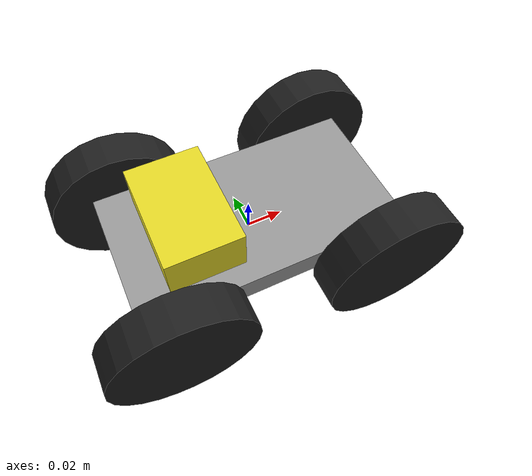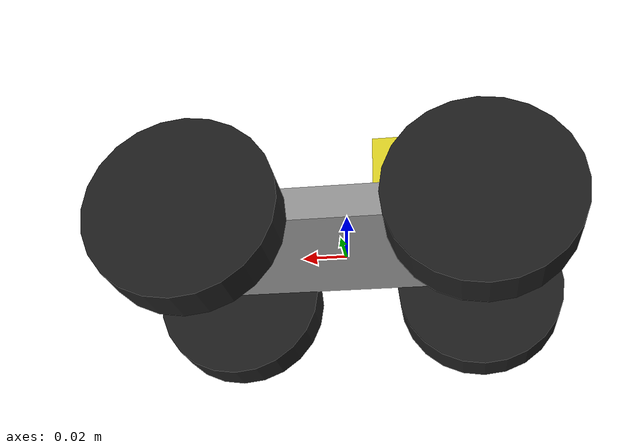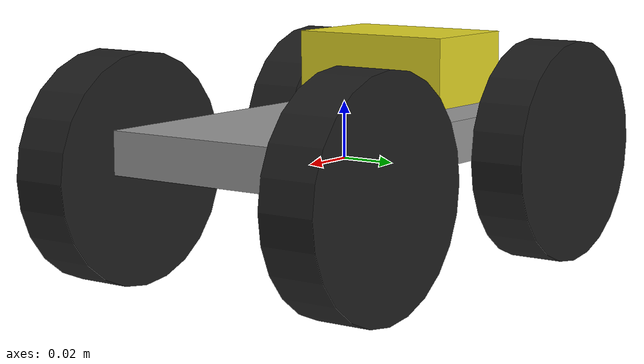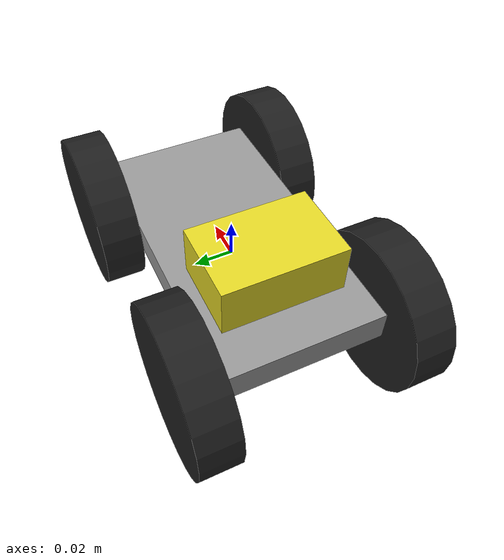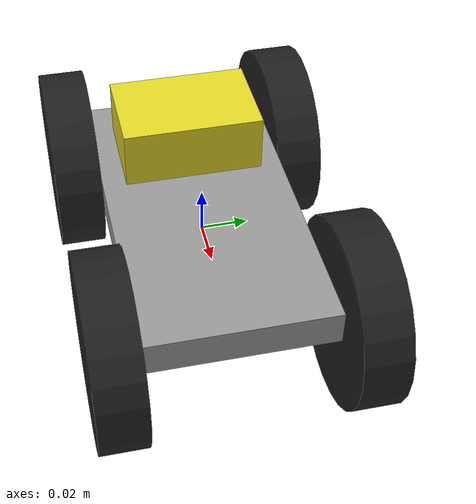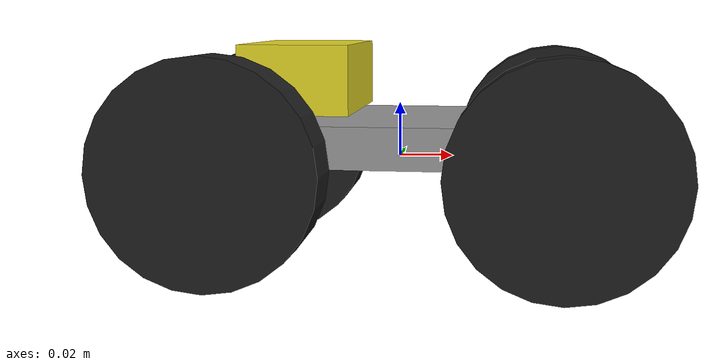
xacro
<?xml version="1.0" ?>

<robot name="trainer_bot" xmlns:xacro="http://ros.org/wiki/xacro">
  <xacro:include filename="$(find trainer_robot_description)/urdf/common_properties.xacro"/>

  <xacro:property name="base_width" value="0.08" /> <!-- Base -->
  <xacro:property name="base_length" value="0.15" /> <!-- Base -->
  <xacro:property name="base_height" value="0.015" /> <!-- Base -->
  <xacro:property name="wheel_length" value="0.02" /> <!-- Wheel -->
  <xacro:property name="wheel_radius" value="0.04" /> <!-- Wheel -->
  <xacro:property name="distance_from_middle_wheels" value="0.06" /> <!-- Wheel -->

  <xacro:macro name="wheel_continuous" params="name type distance_from_middle_wheels distance_from_base radius length mu1 mu2 mass">
    <joint name="${name}_joint" type="${type}">
      <parent link="base_link"/>
      <child link="${name}_link"/>
      <origin xyz="${distance_from_middle_wheels} ${distance_from_base} 0" rpy="0 0 0"/>
      <axis xyz="0 1 0"/>
    </joint>

    <link name="${name}_link">
      <visual>
        <origin xyz="0 0 0" rpy="1.57 0 0"/>
        <geometry>
          <cylinder radius="${radius}" length="${length}"/>
        </geometry>
        <material name="black"/>
      </visual>
      <collision>
        <origin xyz="0 0 0" rpy="1.57 0 0"/>
        <geometry>
          <cylinder radius="${radius}" length="${length * 0.8}"/>
        </geometry>
        <material name="black"/>
      </collision>
      <inertial>
        <mass value="${mass}"/>
        <inertia
                  ixx="${0.083*mass*(3*radius*radius+length*length)}"
                  ixy="0.0"
                  ixz="0.0"
                  iyy="${0.083*mass*(3*radius*radius+length*length)}"
                  iyz="0.0"
                  izz="${0.5*mass*(radius*radius)}" />
      </inertial>
    </link>
	  <transmission name="${name}_trans">
	  	<type>transmission_interface/SimpleTransmission</type>
	  	<joint name="${name}_joint">
        <hardwareInterface>hardware_interface/VelocityJointInterface</hardwareInterface>
	  	</joint>
	  	<actuator name="${name}_motor">
	  		<mechanicalReduction>1</mechanicalReduction>
	  		<hardwareInterface>VelocityJointInterface</hardwareInterface>
	  	</actuator>
	  </transmission>
    <gazebo reference="${name}_link">
      <material>Gazebo/Black</material>
      <mu1>${mu1}</mu1>
      <mu2>${mu2}</mu2>
      <maxVel>1.0</maxVel>
      <fdir1>1 0 0</fdir1>
      <material>Gazebo/FlatBlack</material>
    </gazebo>
  </xacro:macro>

  <joint name="base_joint" type="fixed">
    <parent link="base_footprint"/>
    <child link="base_link"/>
    <origin xyz="0.0 0.0 0" rpy="0 0 0"/>
  </joint>
  <link name="base_footprint"/>

  <link name="base_link">
    <visual>
      <origin xyz="0 0 ${base_height/2}" rpy="0 0.0 0"/>
      <geometry>
        <box size="${base_length} ${base_width} ${base_height}"/>
      </geometry>
      <material name="grey"/>
    </visual>
    <collision>
      <origin xyz="0 0 ${base_height/2}" rpy="0 0.0 0"/>
      <geometry>
        <box size="${base_length} ${base_width} ${base_height}"/>
      </geometry>
      <material name="grey"/>
    </collision>
    <inertial>
      <mass value="${1}"/>
      <inertia
                ixx="${0.083*1*(base_width+base_height)}"
                ixy="0.0"
                ixz="0.0"
                iyy="${0.083*1*(base_length+base_height)}"
                iyz="0.0"
                izz="${0.083*1*(base_width+base_length)}" />
    </inertial>
  </link>

  <joint name="batter_holder_joint" type="fixed">
    <parent link="base_link"/>
    <child link="battery_holder_link"/>
    <origin xyz="${distance_from_middle_wheels} 0 0.015" rpy="0 0 0"/>
  </joint>

  <link name="battery_holder_link">
    <visual>
      <origin xyz="-0.095 0 0.015" rpy="0 0 0"/>
      <geometry>
        <box size="0.04 0.06 0.025"/>
      </geometry>
      <material name="yellow"/>
    </visual>
    <collision>
      <origin xyz="-0.095 0 0.015" rpy="0 0 0"/>
      <geometry>
        <box size="0.04 0.06 0.025"/>
      </geometry>
    </collision>
  </link>
  <gazebo reference="base_link">
    <material>Gazebo/DarkGrey</material>
  </gazebo>
  <gazebo reference="battery_holder_link">
    <material>Gazebo/Yellow</material>
  </gazebo>

  <xacro:wheel_continuous name="left_front_wheel" type="continuous" distance_from_middle_wheels="${distance_from_middle_wheels}" distance_from_base="${wheel_length/2 + base_width/2}" radius="${wheel_radius}" length="${wheel_length}" mu1="1" mu2="1" mass="0.3" />
  <xacro:wheel_continuous name="right_front_wheel" type="continuous" distance_from_middle_wheels="${distance_from_middle_wheels}" distance_from_base="-${wheel_length/2 + base_width/2}" radius="${wheel_radius}" length="${wheel_length}" mu1="1" mu2="1" mass="0.3" />

  <xacro:wheel_continuous name="left_rear_wheel" type="continuous" distance_from_middle_wheels="-${distance_from_middle_wheels}" distance_from_base="${wheel_length/2 + base_width/2}" radius="${wheel_radius}" length="${wheel_length}" mu1="0.01" mu2="0.01" mass="0.3" />
  <xacro:wheel_continuous name="right_rear_wheel" type="continuous" distance_from_middle_wheels="-${distance_from_middle_wheels}" distance_from_base="-${wheel_length/2 + base_width/2}" radius="${wheel_radius}" length="${wheel_length}" mu1="0.01" mu2="0.01" mass="0.3" />

	<gazebo>
    <plugin name="differential_drive_controller" filename="libgazebo_ros_skid_steer_drive.so">
      <legacyMode>false</legacyMode>
      <alwaysOn>true</alwaysOn>
      <publishWheelTF>true</publishWheelTF>
      <publishTf>1</publishTf>
      <publishWheelJointState>true</publishWheelJointState>
      <updateRate>20.0</updateRate>
      <leftFrontJoint>left_front_wheel_joint</leftFrontJoint>
      <rightFrontJoint>right_front_wheel_joint</rightFrontJoint>
      <leftRearJoint>left_rear_wheel_joint</leftRearJoint>
      <rightRearJoint>right_rear_wheel_joint</rightRearJoint>
      <wheelSeparation>0.08</wheelSeparation>
      <wheelDiameter>0.08</wheelDiameter>
      <wheelAcceleration>1.0</wheelAcceleration>
      <torque>20</torque>
      <commandTopic>/cmd_vel</commandTopic>
      <odometryTopic>odom</odometryTopic>
      <odometryFrame>odom</odometryFrame>
      <robotBaseFrame>base_footprint</robotBaseFrame>
      <robotNamespace>/</robotNamespace>
      <odometrySource>world</odometrySource>
      <broadcastTF>true</broadcastTF>
    </plugin>
  </gazebo>
</robot>
